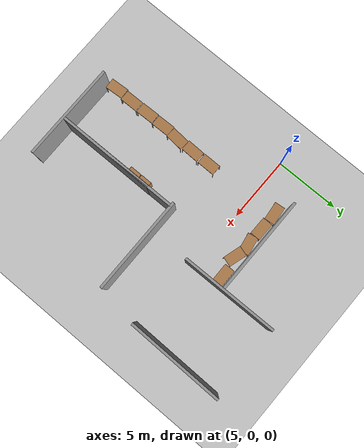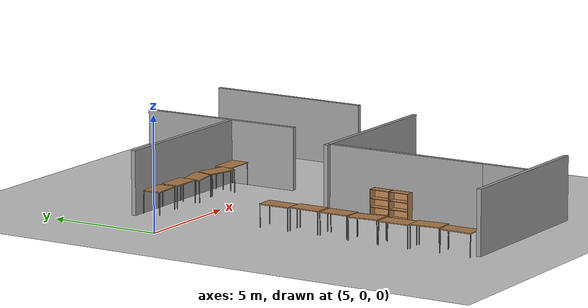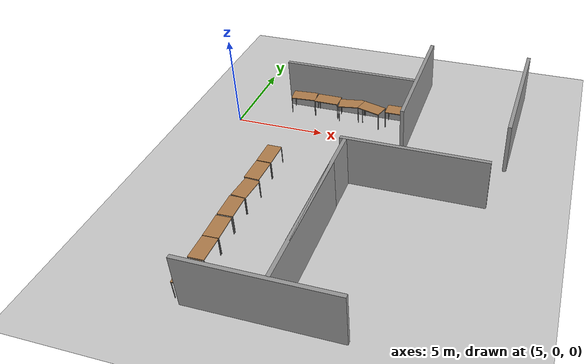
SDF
<sdf version="1.6">
 <world name="default">
  <model name="ground_plane">
   <static>1</static>
   <link name="link">
    <collision name="collision">
     <geometry><plane><normal>0 0 1</normal><size>100 100</size></plane></geometry>
     <surface><friction><ode><mu>100</mu><mu2>50</mu2></ode></friction></surface>
    </collision>
    <visual name="visual">
     <cast_shadows>0</cast_shadows>
     <geometry><plane><normal>0 0 1</normal><size>100 100</size></plane></geometry>
     <material>
      <script><uri>file://media/materials/scripts/gazebo.material</uri><name>Gazebo/Grey</name></script>
     </material>
    </visual>
   </link>
  </model>
  <model name="grey_wall_0">
   <static>1</static>
   <link name="link">
    <pose>0 0 1.4 0 -0 0</pose>
    <collision name="collision"><geometry><box><size>7.5 0.2 2.8</size></box></geometry></collision>
    <visual name="visual">
     <cast_shadows>0</cast_shadows>
     <geometry><box><size>7.5 0.2 2.8</size></box></geometry>
     <material>
      <script>
       <uri>model://grey_wall/materials/scripts</uri>
       <uri>model://grey_wall/materials/textures</uri>
       <name>vrc/grey_wall</name>
      </script>
     </material>
    </visual>
   </link>
   <pose>10.9804 2.57456 0 0 -0 0</pose>
  </model>
  <model name="grey_wall_1">
   <static>1</static>
   <link name="link">
    <pose>0 0 1.4 0 -0 0</pose>
    <collision name="collision"><geometry><box><size>7.5 0.2 2.8</size></box></geometry></collision>
    <visual name="visual">
     <cast_shadows>0</cast_shadows>
     <geometry><box><size>7.5 0.2 2.8</size></box></geometry>
     <material>
      <script>
       <uri>model://grey_wall/materials/scripts</uri>
       <uri>model://grey_wall/materials/textures</uri>
       <name>vrc/grey_wall</name>
      </script>
     </material>
    </visual>
   </link>
   <pose>14.8225 3.08441 0 0 0 -1.56171</pose>
  </model>
  <model name="grey_wall_5">
   <static>1</static>
   <link name="link">
    <pose>0 0 1.4 0 -0 0</pose>
    <collision name="collision"><geometry><box><size>7.5 0.2 2.8</size></box></geometry></collision>
    <visual name="visual">
     <cast_shadows>0</cast_shadows>
     <geometry><box><size>7.5 0.2 2.8</size></box></geometry>
     <material>
      <script>
       <uri>model://grey_wall/materials/scripts</uri>
       <uri>model://grey_wall/materials/textures</uri>
       <name>vrc/grey_wall</name>
      </script>
     </material>
    </visual>
   </link>
   <pose>16.2361 -3.7139 0 0 -0 0</pose>
  </model>
  <model name="grey_wall_6">
   <static>1</static>
   <link name="link">
    <pose>0 0 1.4 0 -0 0</pose>
    <collision name="collision"><geometry><box><size>7.5 0.2 2.8</size></box></geometry></collision>
    <visual name="visual">
     <cast_shadows>0</cast_shadows>
     <geometry><box><size>7.5 0.2 2.8</size></box></geometry>
     <material>
      <script>
       <uri>model://grey_wall/materials/scripts</uri>
       <uri>model://grey_wall/materials/textures</uri>
       <name>vrc/grey_wall</name>
      </script>
     </material>
    </visual>
   </link>
   <pose>12.8081 -9.51508 0 0 0 -1.5687</pose>
  </model>
  <model name="grey_wall_8">
   <static>1</static>
   <link name="link">
    <pose>0 0 1.4 0 -0 0</pose>
    <collision name="collision"><geometry><box><size>7.5 0.2 2.8</size></box></geometry></collision>
    <visual name="visual">
     <cast_shadows>0</cast_shadows>
     <geometry><box><size>7.5 0.2 2.8</size></box></geometry>
     <material>
      <script>
       <uri>model://grey_wall/materials/scripts</uri>
       <uri>model://grey_wall/materials/textures</uri>
       <name>vrc/grey_wall</name>
      </script>
     </material>
    </visual>
   </link>
   <pose>12.3131 -13.3481 0 0 -0 0</pose>
  </model>
  <model name="bookshelf">
   <static>1</static>
   <link name="link">
    <inertial><mass>1</mass></inertial>
    <collision name="back">
     <pose>0 0.005 0.6 0 -0 0</pose>
     <geometry><box><size>0.9 0.01 1.2</size></box></geometry>
    </collision>
    <visual name="visual1">
     <pose>0 0.005 0.6 0 -0 0</pose>
     <geometry><box><size>0.9 0.01 1.2</size></box></geometry>
     <material>
      <script><uri>file://media/materials/scripts/gazebo.material</uri><name>Gazebo/Wood</name></script>
     </material>
    </visual>
    <collision name="left_side">
     <pose>0.45 -0.195 0.6 0 -0 0</pose>
     <geometry><box><size>0.02 0.4 1.2</size></box></geometry>
    </collision>
    <visual name="visual2">
     <pose>0.45 -0.195 0.6 0 -0 0</pose>
     <geometry><box><size>0.02 0.4 1.2</size></box></geometry>
     <material>
      <script><uri>file://media/materials/scripts/gazebo.material</uri><name>Gazebo/Wood</name></script>
     </material>
    </visual>
    <collision name="right_side">
     <pose>-0.45 -0.195 0.6 0 -0 0</pose>
     <geometry><box><size>0.02 0.4 1.2</size></box></geometry>
    </collision>
    <visual name="visual3">
     <pose>-0.45 -0.195 0.6 0 -0 0</pose>
     <geometry><box><size>0.02 0.4 1.2</size></box></geometry>
     <material>
      <script><uri>file://media/materials/scripts/gazebo.material</uri><name>Gazebo/Wood</name></script>
     </material>
    </visual>
    <collision name="bottom">
     <pose>0 -0.195 0.03 0 -0 0</pose>
     <geometry><box><size>0.88 0.4 0.06</size></box></geometry>
    </collision>
    <visual name="visual4">
     <pose>0 -0.195 0.03 0 -0 0</pose>
     <geometry><box><size>0.88 0.4 0.06</size></box></geometry>
     <material>
      <script><uri>file://media/materials/scripts/gazebo.material</uri><name>Gazebo/Wood</name></script>
     </material>
    </visual>
    <collision name="top">
     <pose>0 -0.195 1.19 0 -0 0</pose>
     <geometry><box><size>0.88 0.4 0.02</size></box></geometry>
    </collision>
    <visual name="visual5">
     <pose>0 -0.195 1.19 0 -0 0</pose>
     <geometry><box><size>0.88 0.4 0.02</size></box></geometry>
     <material>
      <script><uri>file://media/materials/scripts/gazebo.material</uri><name>Gazebo/Wood</name></script>
     </material>
    </visual>
    <collision name="low_shelf">
     <pose>0 -0.195 0.43 0 -0 0</pose>
     <geometry><box><size>0.88 0.4 0.02</size></box></geometry>
    </collision>
    <visual name="visual6">
     <pose>0 -0.195 0.43 0 -0 0</pose>
     <geometry><box><size>0.88 0.4 0.02</size></box></geometry>
     <material>
      <script><uri>file://media/materials/scripts/gazebo.material</uri><name>Gazebo/Wood</name></script>
     </material>
    </visual>
    <collision name="high_shelf">
     <pose>0 -0.195 0.8 0 -0 0</pose>
     <geometry><box><size>0.88 0.4 0.02</size></box></geometry>
    </collision>
    <visual name="visual7">
     <pose>0 -0.195 0.8 0 -0 0</pose>
     <geometry><box><size>0.88 0.4 0.02</size></box></geometry>
     <material>
      <script><uri>file://media/materials/scripts/gazebo.material</uri><name>Gazebo/Wood</name></script>
     </material>
    </visual>
   </link>
   <pose>12.6657 -7.42335 0 0 0 -1.5772</pose>
  </model>
  <model name="grey_wall_9">
   <static>1</static>
   <link name="link">
    <pose>0 0 1.4 0 -0 0</pose>
    <collision name="collision"><geometry><box><size>7.5 0.2 2.8</size></box></geometry></collision>
    <visual name="visual">
     <cast_shadows>0</cast_shadows>
     <geometry><box><size>7.5 0.2 2.8</size></box></geometry>
     <material>
      <script>
       <uri>model://grey_wall/materials/scripts</uri>
       <uri>model://grey_wall/materials/textures</uri>
       <name>vrc/grey_wall</name>
      </script>
     </material>
    </visual>
   </link>
   <pose>20.4888 3.13835 0 0 -0 1.55576</pose>
  </model>
  <model name="table_0">
   <static>0</static>
   <link name="link">
    <collision name="surface">
     <pose>0 0 1 0 -0 0</pose>
     <geometry><box><size>1.5 0.8 0.03</size></box></geometry>
     <surface><friction><ode><mu>0.6</mu><mu2>0.6</mu2></ode></friction></surface>
    </collision>
    <visual name="visual1">
     <pose>0 0 1 0 -0 0</pose>
     <geometry><box><size>1.4 0.8 0.04</size></box></geometry>
     <material>
      <script><uri>file://media/materials/scripts/gazebo.material</uri><name>Gazebo/Wood</name></script>
     </material>
    </visual>
    <collision name="front_left_leg">
     <pose>0.68 0.38 0.5 0 -0 0</pose>
     <geometry><cylinder><radius>0.02</radius><length>1</length></cylinder></geometry>
    </collision>
    <visual name="front_left_leg">
     <pose>0.68 0.38 0.5 0 -0 0</pose>
     <geometry><cylinder><radius>0.02</radius><length>1</length></cylinder></geometry>
     <material>
      <script><uri>file://media/materials/scripts/gazebo.material</uri><name>Gazebo/Grey</name></script>
     </material>
    </visual>
    <collision name="front_right_leg">
     <pose>0.68 -0.38 0.5 0 -0 0</pose>
     <geometry><cylinder><radius>0.02</radius><length>1</length></cylinder></geometry>
    </collision>
    <visual name="front_right_leg">
     <pose>0.68 -0.38 0.5 0 -0 0</pose>
     <geometry><cylinder><radius>0.02</radius><length>1</length></cylinder></geometry>
     <material>
      <script><uri>file://media/materials/scripts/gazebo.material</uri><name>Gazebo/Grey</name></script>
     </material>
    </visual>
    <collision name="back_right_leg">
     <pose>-0.68 -0.38 0.5 0 -0 0</pose>
     <geometry><cylinder><radius>0.02</radius><length>1</length></cylinder></geometry>
    </collision>
    <visual name="back_right_leg">
     <pose>-0.68 -0.38 0.5 0 -0 0</pose>
     <geometry><cylinder><radius>0.02</radius><length>1</length></cylinder></geometry>
     <material>
      <script><uri>file://media/materials/scripts/gazebo.material</uri><name>Gazebo/Grey</name></script>
     </material>
    </visual>
    <collision name="back_left_leg">
     <pose>-0.68 0.38 0.5 0 -0 0</pose>
     <geometry><cylinder><radius>0.02</radius><length>1</length></cylinder></geometry>
    </collision>
    <visual name="back_left_leg">
     <pose>-0.68 0.38 0.5 0 -0 0</pose>
     <geometry><cylinder><radius>0.02</radius><length>1</length></cylinder></geometry>
     <material>
      <script><uri>file://media/materials/scripts/gazebo.material</uri><name>Gazebo/Grey</name></script>
     </material>
    </visual>
    <inertial>
     <inertia><ixx>1</ixx><ixy>0</ixy><ixz>0</ixz><iyy>1</iyy><iyz>0</iyz><izz>1</izz></inertia>
     <mass>1</mass>
    </inertial>
   </link>
   <pose>8.29925 1.99529 0.017017 0.002681 0.022852 0.109343</pose>
  </model>
  <model name="table_1">
   <static>0</static>
   <link name="link">
    <collision name="surface">
     <pose>0 0 1 0 -0 0</pose>
     <geometry><box><size>1.5 0.8 0.03</size></box></geometry>
     <surface><friction><ode><mu>0.6</mu><mu2>0.6</mu2></ode></friction></surface>
    </collision>
    <visual name="visual1">
     <pose>0 0 1 0 -0 0</pose>
     <geometry><box><size>1.4 0.8 0.04</size></box></geometry>
     <material>
      <script><uri>file://media/materials/scripts/gazebo.material</uri><name>Gazebo/Wood</name></script>
     </material>
    </visual>
    <collision name="front_left_leg">
     <pose>0.68 0.38 0.5 0 -0 0</pose>
     <geometry><cylinder><radius>0.02</radius><length>1</length></cylinder></geometry>
    </collision>
    <visual name="front_left_leg">
     <pose>0.68 0.38 0.5 0 -0 0</pose>
     <geometry><cylinder><radius>0.02</radius><length>1</length></cylinder></geometry>
     <material>
      <script><uri>file://media/materials/scripts/gazebo.material</uri><name>Gazebo/Grey</name></script>
     </material>
    </visual>
    <collision name="front_right_leg">
     <pose>0.68 -0.38 0.5 0 -0 0</pose>
     <geometry><cylinder><radius>0.02</radius><length>1</length></cylinder></geometry>
    </collision>
    <visual name="front_right_leg">
     <pose>0.68 -0.38 0.5 0 -0 0</pose>
     <geometry><cylinder><radius>0.02</radius><length>1</length></cylinder></geometry>
     <material>
      <script><uri>file://media/materials/scripts/gazebo.material</uri><name>Gazebo/Grey</name></script>
     </material>
    </visual>
    <collision name="back_right_leg">
     <pose>-0.68 -0.38 0.5 0 -0 0</pose>
     <geometry><cylinder><radius>0.02</radius><length>1</length></cylinder></geometry>
    </collision>
    <visual name="back_right_leg">
     <pose>-0.68 -0.38 0.5 0 -0 0</pose>
     <geometry><cylinder><radius>0.02</radius><length>1</length></cylinder></geometry>
     <material>
      <script><uri>file://media/materials/scripts/gazebo.material</uri><name>Gazebo/Grey</name></script>
     </material>
    </visual>
    <collision name="back_left_leg">
     <pose>-0.68 0.38 0.5 0 -0 0</pose>
     <geometry><cylinder><radius>0.02</radius><length>1</length></cylinder></geometry>
    </collision>
    <visual name="back_left_leg">
     <pose>-0.68 0.38 0.5 0 -0 0</pose>
     <geometry><cylinder><radius>0.02</radius><length>1</length></cylinder></geometry>
     <material>
      <script><uri>file://media/materials/scripts/gazebo.material</uri><name>Gazebo/Grey</name></script>
     </material>
    </visual>
    <inertial>
     <inertia><ixx>1</ixx><ixy>0</ixy><ixz>0</ixz><iyy>1</iyy><iyz>0</iyz><izz>1</izz></inertia>
     <mass>1</mass>
    </inertial>
   </link>
   <pose>9.77254 1.97204 0.030307 -1.5e-05 0.000418 -0.008263</pose>
  </model>
  <model name="table_2">
   <static>0</static>
   <link name="link">
    <collision name="surface">
     <pose>0 0 1 0 -0 0</pose>
     <geometry><box><size>1.5 0.8 0.03</size></box></geometry>
     <surface><friction><ode><mu>0.6</mu><mu2>0.6</mu2></ode></friction></surface>
    </collision>
    <visual name="visual1">
     <pose>0 0 1 0 -0 0</pose>
     <geometry><box><size>1.4 0.8 0.04</size></box></geometry>
     <material>
      <script><uri>file://media/materials/scripts/gazebo.material</uri><name>Gazebo/Wood</name></script>
     </material>
    </visual>
    <collision name="front_left_leg">
     <pose>0.68 0.38 0.5 0 -0 0</pose>
     <geometry><cylinder><radius>0.02</radius><length>1</length></cylinder></geometry>
    </collision>
    <visual name="front_left_leg">
     <pose>0.68 0.38 0.5 0 -0 0</pose>
     <geometry><cylinder><radius>0.02</radius><length>1</length></cylinder></geometry>
     <material>
      <script><uri>file://media/materials/scripts/gazebo.material</uri><name>Gazebo/Grey</name></script>
     </material>
    </visual>
    <collision name="front_right_leg">
     <pose>0.68 -0.38 0.5 0 -0 0</pose>
     <geometry><cylinder><radius>0.02</radius><length>1</length></cylinder></geometry>
    </collision>
    <visual name="front_right_leg">
     <pose>0.68 -0.38 0.5 0 -0 0</pose>
     <geometry><cylinder><radius>0.02</radius><length>1</length></cylinder></geometry>
     <material>
      <script><uri>file://media/materials/scripts/gazebo.material</uri><name>Gazebo/Grey</name></script>
     </material>
    </visual>
    <collision name="back_right_leg">
     <pose>-0.68 -0.38 0.5 0 -0 0</pose>
     <geometry><cylinder><radius>0.02</radius><length>1</length></cylinder></geometry>
    </collision>
    <visual name="back_right_leg">
     <pose>-0.68 -0.38 0.5 0 -0 0</pose>
     <geometry><cylinder><radius>0.02</radius><length>1</length></cylinder></geometry>
     <material>
      <script><uri>file://media/materials/scripts/gazebo.material</uri><name>Gazebo/Grey</name></script>
     </material>
    </visual>
    <collision name="back_left_leg">
     <pose>-0.68 0.38 0.5 0 -0 0</pose>
     <geometry><cylinder><radius>0.02</radius><length>1</length></cylinder></geometry>
    </collision>
    <visual name="back_left_leg">
     <pose>-0.68 0.38 0.5 0 -0 0</pose>
     <geometry><cylinder><radius>0.02</radius><length>1</length></cylinder></geometry>
     <material>
      <script><uri>file://media/materials/scripts/gazebo.material</uri><name>Gazebo/Grey</name></script>
     </material>
    </visual>
    <inertial>
     <inertia><ixx>1</ixx><ixy>0</ixy><ixz>0</ixz><iyy>1</iyy><iyz>0</iyz><izz>1</izz></inertia>
     <mass>1</mass>
    </inertial>
   </link>
   <pose>11.1931 1.9518 -5e-06 0 7e-06 0.172435</pose>
  </model>
  <model name="table_3">
   <static>0</static>
   <link name="link">
    <collision name="surface">
     <pose>0 0 1 0 -0 0</pose>
     <geometry><box><size>1.5 0.8 0.03</size></box></geometry>
     <surface><friction><ode><mu>0.6</mu><mu2>0.6</mu2></ode></friction></surface>
    </collision>
    <visual name="visual1">
     <pose>0 0 1 0 -0 0</pose>
     <geometry><box><size>1.4 0.8 0.04</size></box></geometry>
     <material>
      <script><uri>file://media/materials/scripts/gazebo.material</uri><name>Gazebo/Wood</name></script>
     </material>
    </visual>
    <collision name="front_left_leg">
     <pose>0.68 0.38 0.5 0 -0 0</pose>
     <geometry><cylinder><radius>0.02</radius><length>1</length></cylinder></geometry>
    </collision>
    <visual name="front_left_leg">
     <pose>0.68 0.38 0.5 0 -0 0</pose>
     <geometry><cylinder><radius>0.02</radius><length>1</length></cylinder></geometry>
     <material>
      <script><uri>file://media/materials/scripts/gazebo.material</uri><name>Gazebo/Grey</name></script>
     </material>
    </visual>
    <collision name="front_right_leg">
     <pose>0.68 -0.38 0.5 0 -0 0</pose>
     <geometry><cylinder><radius>0.02</radius><length>1</length></cylinder></geometry>
    </collision>
    <visual name="front_right_leg">
     <pose>0.68 -0.38 0.5 0 -0 0</pose>
     <geometry><cylinder><radius>0.02</radius><length>1</length></cylinder></geometry>
     <material>
      <script><uri>file://media/materials/scripts/gazebo.material</uri><name>Gazebo/Grey</name></script>
     </material>
    </visual>
    <collision name="back_right_leg">
     <pose>-0.68 -0.38 0.5 0 -0 0</pose>
     <geometry><cylinder><radius>0.02</radius><length>1</length></cylinder></geometry>
    </collision>
    <visual name="back_right_leg">
     <pose>-0.68 -0.38 0.5 0 -0 0</pose>
     <geometry><cylinder><radius>0.02</radius><length>1</length></cylinder></geometry>
     <material>
      <script><uri>file://media/materials/scripts/gazebo.material</uri><name>Gazebo/Grey</name></script>
     </material>
    </visual>
    <collision name="back_left_leg">
     <pose>-0.68 0.38 0.5 0 -0 0</pose>
     <geometry><cylinder><radius>0.02</radius><length>1</length></cylinder></geometry>
    </collision>
    <visual name="back_left_leg">
     <pose>-0.68 0.38 0.5 0 -0 0</pose>
     <geometry><cylinder><radius>0.02</radius><length>1</length></cylinder></geometry>
     <material>
      <script><uri>file://media/materials/scripts/gazebo.material</uri><name>Gazebo/Grey</name></script>
     </material>
    </visual>
    <inertial>
     <inertia><ixx>1</ixx><ixy>0</ixy><ixz>0</ixz><iyy>1</iyy><iyz>0</iyz><izz>1</izz></inertia>
     <mass>1</mass>
    </inertial>
   </link>
   <pose>12.4535 1.78657 0.029972 -0 4.3e-05 -0.283259</pose>
  </model>
  <model name="table_4">
   <static>0</static>
   <link name="link">
    <collision name="surface">
     <pose>0 0 1 0 -0 0</pose>
     <geometry><box><size>1.5 0.8 0.03</size></box></geometry>
     <surface><friction><ode><mu>0.6</mu><mu2>0.6</mu2></ode></friction></surface>
    </collision>
    <visual name="visual1">
     <pose>0 0 1 0 -0 0</pose>
     <geometry><box><size>1.4 0.8 0.04</size></box></geometry>
     <material>
      <script><uri>file://media/materials/scripts/gazebo.material</uri><name>Gazebo/Wood</name></script>
     </material>
    </visual>
    <collision name="front_left_leg">
     <pose>0.68 0.38 0.5 0 -0 0</pose>
     <geometry><cylinder><radius>0.02</radius><length>1</length></cylinder></geometry>
    </collision>
    <visual name="front_left_leg">
     <pose>0.68 0.38 0.5 0 -0 0</pose>
     <geometry><cylinder><radius>0.02</radius><length>1</length></cylinder></geometry>
     <material>
      <script><uri>file://media/materials/scripts/gazebo.material</uri><name>Gazebo/Grey</name></script>
     </material>
    </visual>
    <collision name="front_right_leg">
     <pose>0.68 -0.38 0.5 0 -0 0</pose>
     <geometry><cylinder><radius>0.02</radius><length>1</length></cylinder></geometry>
    </collision>
    <visual name="front_right_leg">
     <pose>0.68 -0.38 0.5 0 -0 0</pose>
     <geometry><cylinder><radius>0.02</radius><length>1</length></cylinder></geometry>
     <material>
      <script><uri>file://media/materials/scripts/gazebo.material</uri><name>Gazebo/Grey</name></script>
     </material>
    </visual>
    <collision name="back_right_leg">
     <pose>-0.68 -0.38 0.5 0 -0 0</pose>
     <geometry><cylinder><radius>0.02</radius><length>1</length></cylinder></geometry>
    </collision>
    <visual name="back_right_leg">
     <pose>-0.68 -0.38 0.5 0 -0 0</pose>
     <geometry><cylinder><radius>0.02</radius><length>1</length></cylinder></geometry>
     <material>
      <script><uri>file://media/materials/scripts/gazebo.material</uri><name>Gazebo/Grey</name></script>
     </material>
    </visual>
    <collision name="back_left_leg">
     <pose>-0.68 0.38 0.5 0 -0 0</pose>
     <geometry><cylinder><radius>0.02</radius><length>1</length></cylinder></geometry>
    </collision>
    <visual name="back_left_leg">
     <pose>-0.68 0.38 0.5 0 -0 0</pose>
     <geometry><cylinder><radius>0.02</radius><length>1</length></cylinder></geometry>
     <material>
      <script><uri>file://media/materials/scripts/gazebo.material</uri><name>Gazebo/Grey</name></script>
     </material>
    </visual>
    <inertial>
     <inertia><ixx>1</ixx><ixy>0</ixy><ixz>0</ixz><iyy>1</iyy><iyz>0</iyz><izz>1</izz></inertia>
     <mass>1</mass>
    </inertial>
   </link>
   <pose>13.9823 2.00803 -4.5e-05 4e-06 7e-06 0.009076</pose>
  </model>
  <model name="table_5">
   <static>0</static>
   <link name="link">
    <collision name="surface">
     <pose>0 0 1 0 -0 0</pose>
     <geometry><box><size>1.5 0.8 0.03</size></box></geometry>
     <surface><friction><ode><mu>0.6</mu><mu2>0.6</mu2></ode></friction></surface>
    </collision>
    <visual name="visual1">
     <pose>0 0 1 0 -0 0</pose>
     <geometry><box><size>1.4 0.8 0.04</size></box></geometry>
     <material>
      <script><uri>file://media/materials/scripts/gazebo.material</uri><name>Gazebo/Wood</name></script>
     </material>
    </visual>
    <collision name="front_left_leg">
     <pose>0.68 0.38 0.5 0 -0 0</pose>
     <geometry><cylinder><radius>0.02</radius><length>1</length></cylinder></geometry>
    </collision>
    <visual name="front_left_leg">
     <pose>0.68 0.38 0.5 0 -0 0</pose>
     <geometry><cylinder><radius>0.02</radius><length>1</length></cylinder></geometry>
     <material>
      <script><uri>file://media/materials/scripts/gazebo.material</uri><name>Gazebo/Grey</name></script>
     </material>
    </visual>
    <collision name="front_right_leg">
     <pose>0.68 -0.38 0.5 0 -0 0</pose>
     <geometry><cylinder><radius>0.02</radius><length>1</length></cylinder></geometry>
    </collision>
    <visual name="front_right_leg">
     <pose>0.68 -0.38 0.5 0 -0 0</pose>
     <geometry><cylinder><radius>0.02</radius><length>1</length></cylinder></geometry>
     <material>
      <script><uri>file://media/materials/scripts/gazebo.material</uri><name>Gazebo/Grey</name></script>
     </material>
    </visual>
    <collision name="back_right_leg">
     <pose>-0.68 -0.38 0.5 0 -0 0</pose>
     <geometry><cylinder><radius>0.02</radius><length>1</length></cylinder></geometry>
    </collision>
    <visual name="back_right_leg">
     <pose>-0.68 -0.38 0.5 0 -0 0</pose>
     <geometry><cylinder><radius>0.02</radius><length>1</length></cylinder></geometry>
     <material>
      <script><uri>file://media/materials/scripts/gazebo.material</uri><name>Gazebo/Grey</name></script>
     </material>
    </visual>
    <collision name="back_left_leg">
     <pose>-0.68 0.38 0.5 0 -0 0</pose>
     <geometry><cylinder><radius>0.02</radius><length>1</length></cylinder></geometry>
    </collision>
    <visual name="back_left_leg">
     <pose>-0.68 0.38 0.5 0 -0 0</pose>
     <geometry><cylinder><radius>0.02</radius><length>1</length></cylinder></geometry>
     <material>
      <script><uri>file://media/materials/scripts/gazebo.material</uri><name>Gazebo/Grey</name></script>
     </material>
    </visual>
    <inertial>
     <inertia><ixx>1</ixx><ixy>0</ixy><ixz>0</ixz><iyy>1</iyy><iyz>0</iyz><izz>1</izz></inertia>
     <mass>1</mass>
    </inertial>
   </link>
   <pose>8.56264 -12.4509 0.014876 -0.001011 0.020718 -1.51118</pose>
  </model>
  <model name="table_5_clone">
   <static>0</static>
   <link name="link">
    <collision name="surface">
     <pose>0 0 1 0 -0 0</pose>
     <geometry><box><size>1.5 0.8 0.03</size></box></geometry>
     <surface><friction><ode><mu>0.6</mu><mu2>0.6</mu2></ode></friction></surface>
    </collision>
    <visual name="visual1">
     <pose>0 0 1 0 -0 0</pose>
     <geometry><box><size>1.4 0.8 0.04</size></box></geometry>
     <material>
      <script><uri>file://media/materials/scripts/gazebo.material</uri><name>Gazebo/Wood</name></script>
     </material>
    </visual>
    <collision name="front_left_leg">
     <pose>0.68 0.38 0.5 0 -0 0</pose>
     <geometry><cylinder><radius>0.02</radius><length>1</length></cylinder></geometry>
    </collision>
    <visual name="front_left_leg">
     <pose>0.68 0.38 0.5 0 -0 0</pose>
     <geometry><cylinder><radius>0.02</radius><length>1</length></cylinder></geometry>
     <material>
      <script><uri>file://media/materials/scripts/gazebo.material</uri><name>Gazebo/Grey</name></script>
     </material>
    </visual>
    <collision name="front_right_leg">
     <pose>0.68 -0.38 0.5 0 -0 0</pose>
     <geometry><cylinder><radius>0.02</radius><length>1</length></cylinder></geometry>
    </collision>
    <visual name="front_right_leg">
     <pose>0.68 -0.38 0.5 0 -0 0</pose>
     <geometry><cylinder><radius>0.02</radius><length>1</length></cylinder></geometry>
     <material>
      <script><uri>file://media/materials/scripts/gazebo.material</uri><name>Gazebo/Grey</name></script>
     </material>
    </visual>
    <collision name="back_right_leg">
     <pose>-0.68 -0.38 0.5 0 -0 0</pose>
     <geometry><cylinder><radius>0.02</radius><length>1</length></cylinder></geometry>
    </collision>
    <visual name="back_right_leg">
     <pose>-0.68 -0.38 0.5 0 -0 0</pose>
     <geometry><cylinder><radius>0.02</radius><length>1</length></cylinder></geometry>
     <material>
      <script><uri>file://media/materials/scripts/gazebo.material</uri><name>Gazebo/Grey</name></script>
     </material>
    </visual>
    <collision name="back_left_leg">
     <pose>-0.68 0.38 0.5 0 -0 0</pose>
     <geometry><cylinder><radius>0.02</radius><length>1</length></cylinder></geometry>
    </collision>
    <visual name="back_left_leg">
     <pose>-0.68 0.38 0.5 0 -0 0</pose>
     <geometry><cylinder><radius>0.02</radius><length>1</length></cylinder></geometry>
     <material>
      <script><uri>file://media/materials/scripts/gazebo.material</uri><name>Gazebo/Grey</name></script>
     </material>
    </visual>
    <inertial>
     <inertia><ixx>1</ixx><ixy>0</ixy><ixz>0</ixz><iyy>1</iyy><iyz>0</iyz><izz>1</izz></inertia>
     <mass>1</mass>
    </inertial>
   </link>
   <pose>8.59029 -11.0553 0.045945 -3.2e-05 -0.021002 -1.55607</pose>
  </model>
  <model name="table_5_clone_0">
   <static>0</static>
   <link name="link">
    <collision name="surface">
     <pose>0 0 1 0 -0 0</pose>
     <geometry><box><size>1.5 0.8 0.03</size></box></geometry>
     <surface><friction><ode><mu>0.6</mu><mu2>0.6</mu2></ode></friction></surface>
    </collision>
    <visual name="visual1">
     <pose>0 0 1 0 -0 0</pose>
     <geometry><box><size>1.4 0.8 0.04</size></box></geometry>
     <material>
      <script><uri>file://media/materials/scripts/gazebo.material</uri><name>Gazebo/Wood</name></script>
     </material>
    </visual>
    <collision name="front_left_leg">
     <pose>0.68 0.38 0.5 0 -0 0</pose>
     <geometry><cylinder><radius>0.02</radius><length>1</length></cylinder></geometry>
    </collision>
    <visual name="front_left_leg">
     <pose>0.68 0.38 0.5 0 -0 0</pose>
     <geometry><cylinder><radius>0.02</radius><length>1</length></cylinder></geometry>
     <material>
      <script><uri>file://media/materials/scripts/gazebo.material</uri><name>Gazebo/Grey</name></script>
     </material>
    </visual>
    <collision name="front_right_leg">
     <pose>0.68 -0.38 0.5 0 -0 0</pose>
     <geometry><cylinder><radius>0.02</radius><length>1</length></cylinder></geometry>
    </collision>
    <visual name="front_right_leg">
     <pose>0.68 -0.38 0.5 0 -0 0</pose>
     <geometry><cylinder><radius>0.02</radius><length>1</length></cylinder></geometry>
     <material>
      <script><uri>file://media/materials/scripts/gazebo.material</uri><name>Gazebo/Grey</name></script>
     </material>
    </visual>
    <collision name="back_right_leg">
     <pose>-0.68 -0.38 0.5 0 -0 0</pose>
     <geometry><cylinder><radius>0.02</radius><length>1</length></cylinder></geometry>
    </collision>
    <visual name="back_right_leg">
     <pose>-0.68 -0.38 0.5 0 -0 0</pose>
     <geometry><cylinder><radius>0.02</radius><length>1</length></cylinder></geometry>
     <material>
      <script><uri>file://media/materials/scripts/gazebo.material</uri><name>Gazebo/Grey</name></script>
     </material>
    </visual>
    <collision name="back_left_leg">
     <pose>-0.68 0.38 0.5 0 -0 0</pose>
     <geometry><cylinder><radius>0.02</radius><length>1</length></cylinder></geometry>
    </collision>
    <visual name="back_left_leg">
     <pose>-0.68 0.38 0.5 0 -0 0</pose>
     <geometry><cylinder><radius>0.02</radius><length>1</length></cylinder></geometry>
     <material>
      <script><uri>file://media/materials/scripts/gazebo.material</uri><name>Gazebo/Grey</name></script>
     </material>
    </visual>
    <inertial>
     <inertia><ixx>1</ixx><ixy>0</ixy><ixz>0</ixz><iyy>1</iyy><iyz>0</iyz><izz>1</izz></inertia>
     <mass>1</mass>
    </inertial>
   </link>
   <pose>8.5353 -9.58081 -0.000122 -1.9e-05 3.4e-05 -1.5427</pose>
  </model>
  <model name="table_5_clone_1">
   <static>0</static>
   <link name="link">
    <collision name="surface">
     <pose>0 0 1 0 -0 0</pose>
     <geometry><box><size>1.5 0.8 0.03</size></box></geometry>
     <surface><friction><ode><mu>0.6</mu><mu2>0.6</mu2></ode></friction></surface>
    </collision>
    <visual name="visual1">
     <pose>0 0 1 0 -0 0</pose>
     <geometry><box><size>1.4 0.8 0.04</size></box></geometry>
     <material>
      <script><uri>file://media/materials/scripts/gazebo.material</uri><name>Gazebo/Wood</name></script>
     </material>
    </visual>
    <collision name="front_left_leg">
     <pose>0.68 0.38 0.5 0 -0 0</pose>
     <geometry><cylinder><radius>0.02</radius><length>1</length></cylinder></geometry>
    </collision>
    <visual name="front_left_leg">
     <pose>0.68 0.38 0.5 0 -0 0</pose>
     <geometry><cylinder><radius>0.02</radius><length>1</length></cylinder></geometry>
     <material>
      <script><uri>file://media/materials/scripts/gazebo.material</uri><name>Gazebo/Grey</name></script>
     </material>
    </visual>
    <collision name="front_right_leg">
     <pose>0.68 -0.38 0.5 0 -0 0</pose>
     <geometry><cylinder><radius>0.02</radius><length>1</length></cylinder></geometry>
    </collision>
    <visual name="front_right_leg">
     <pose>0.68 -0.38 0.5 0 -0 0</pose>
     <geometry><cylinder><radius>0.02</radius><length>1</length></cylinder></geometry>
     <material>
      <script><uri>file://media/materials/scripts/gazebo.material</uri><name>Gazebo/Grey</name></script>
     </material>
    </visual>
    <collision name="back_right_leg">
     <pose>-0.68 -0.38 0.5 0 -0 0</pose>
     <geometry><cylinder><radius>0.02</radius><length>1</length></cylinder></geometry>
    </collision>
    <visual name="back_right_leg">
     <pose>-0.68 -0.38 0.5 0 -0 0</pose>
     <geometry><cylinder><radius>0.02</radius><length>1</length></cylinder></geometry>
     <material>
      <script><uri>file://media/materials/scripts/gazebo.material</uri><name>Gazebo/Grey</name></script>
     </material>
    </visual>
    <collision name="back_left_leg">
     <pose>-0.68 0.38 0.5 0 -0 0</pose>
     <geometry><cylinder><radius>0.02</radius><length>1</length></cylinder></geometry>
    </collision>
    <visual name="back_left_leg">
     <pose>-0.68 0.38 0.5 0 -0 0</pose>
     <geometry><cylinder><radius>0.02</radius><length>1</length></cylinder></geometry>
     <material>
      <script><uri>file://media/materials/scripts/gazebo.material</uri><name>Gazebo/Grey</name></script>
     </material>
    </visual>
    <inertial>
     <inertia><ixx>1</ixx><ixy>0</ixy><ixz>0</ixz><iyy>1</iyy><iyz>0</iyz><izz>1</izz></inertia>
     <mass>1</mass>
    </inertial>
   </link>
   <pose>8.52122 -8.15174 0.015004 -9e-06 -0.021522 -1.5436</pose>
  </model>
  <model name="table_5_clone_2">
   <static>0</static>
   <link name="link">
    <collision name="surface">
     <pose>0 0 1 0 -0 0</pose>
     <geometry><box><size>1.5 0.8 0.03</size></box></geometry>
     <surface><friction><ode><mu>0.6</mu><mu2>0.6</mu2></ode></friction></surface>
    </collision>
    <visual name="visual1">
     <pose>0 0 1 0 -0 0</pose>
     <geometry><box><size>1.4 0.8 0.04</size></box></geometry>
     <material>
      <script><uri>file://media/materials/scripts/gazebo.material</uri><name>Gazebo/Wood</name></script>
     </material>
    </visual>
    <collision name="front_left_leg">
     <pose>0.68 0.38 0.5 0 -0 0</pose>
     <geometry><cylinder><radius>0.02</radius><length>1</length></cylinder></geometry>
    </collision>
    <visual name="front_left_leg">
     <pose>0.68 0.38 0.5 0 -0 0</pose>
     <geometry><cylinder><radius>0.02</radius><length>1</length></cylinder></geometry>
     <material>
      <script><uri>file://media/materials/scripts/gazebo.material</uri><name>Gazebo/Grey</name></script>
     </material>
    </visual>
    <collision name="front_right_leg">
     <pose>0.68 -0.38 0.5 0 -0 0</pose>
     <geometry><cylinder><radius>0.02</radius><length>1</length></cylinder></geometry>
    </collision>
    <visual name="front_right_leg">
     <pose>0.68 -0.38 0.5 0 -0 0</pose>
     <geometry><cylinder><radius>0.02</radius><length>1</length></cylinder></geometry>
     <material>
      <script><uri>file://media/materials/scripts/gazebo.material</uri><name>Gazebo/Grey</name></script>
     </material>
    </visual>
    <collision name="back_right_leg">
     <pose>-0.68 -0.38 0.5 0 -0 0</pose>
     <geometry><cylinder><radius>0.02</radius><length>1</length></cylinder></geometry>
    </collision>
    <visual name="back_right_leg">
     <pose>-0.68 -0.38 0.5 0 -0 0</pose>
     <geometry><cylinder><radius>0.02</radius><length>1</length></cylinder></geometry>
     <material>
      <script><uri>file://media/materials/scripts/gazebo.material</uri><name>Gazebo/Grey</name></script>
     </material>
    </visual>
    <collision name="back_left_leg">
     <pose>-0.68 0.38 0.5 0 -0 0</pose>
     <geometry><cylinder><radius>0.02</radius><length>1</length></cylinder></geometry>
    </collision>
    <visual name="back_left_leg">
     <pose>-0.68 0.38 0.5 0 -0 0</pose>
     <geometry><cylinder><radius>0.02</radius><length>1</length></cylinder></geometry>
     <material>
      <script><uri>file://media/materials/scripts/gazebo.material</uri><name>Gazebo/Grey</name></script>
     </material>
    </visual>
    <inertial>
     <inertia><ixx>1</ixx><ixy>0</ixy><ixz>0</ixz><iyy>1</iyy><iyz>0</iyz><izz>1</izz></inertia>
     <mass>1</mass>
    </inertial>
   </link>
   <pose>8.5981 -6.74409 0.015299 -0 -0.021857 -1.65205</pose>
  </model>
  <model name="grey_wall_10">
   <static>1</static>
   <link name="link">
    <pose>0 0 1.4 0 -0 0</pose>
    <collision name="collision"><geometry><box><size>7.5 0.2 2.8</size></box></geometry></collision>
    <visual name="visual">
     <cast_shadows>0</cast_shadows>
     <geometry><box><size>7.5 0.2 2.8</size></box></geometry>
     <material>
      <script>
       <uri>model://grey_wall/materials/scripts</uri>
       <uri>model://grey_wall/materials/textures</uri>
       <name>vrc/grey_wall</name>
      </script>
     </material>
    </visual>
   </link>
   <pose>12.7918 -7.46244 0 0 -0 1.57413</pose>
  </model>
  <model name="table_5_clone_2_clone">
   <static>0</static>
   <link name="link">
    <collision name="surface">
     <pose>0 0 1 0 -0 0</pose>
     <geometry><box><size>1.5 0.8 0.03</size></box></geometry>
     <surface><friction><ode><mu>0.6</mu><mu2>0.6</mu2></ode></friction></surface>
    </collision>
    <visual name="visual1">
     <pose>0 0 1 0 -0 0</pose>
     <geometry><box><size>1.4 0.8 0.04</size></box></geometry>
     <material>
      <script><uri>file://media/materials/scripts/gazebo.material</uri><name>Gazebo/Wood</name></script>
     </material>
    </visual>
    <collision name="front_left_leg">
     <pose>0.68 0.38 0.5 0 -0 0</pose>
     <geometry><cylinder><radius>0.02</radius><length>1</length></cylinder></geometry>
    </collision>
    <visual name="front_left_leg">
     <pose>0.68 0.38 0.5 0 -0 0</pose>
     <geometry><cylinder><radius>0.02</radius><length>1</length></cylinder></geometry>
     <material>
      <script><uri>file://media/materials/scripts/gazebo.material</uri><name>Gazebo/Grey</name></script>
     </material>
    </visual>
    <collision name="front_right_leg">
     <pose>0.68 -0.38 0.5 0 -0 0</pose>
     <geometry><cylinder><radius>0.02</radius><length>1</length></cylinder></geometry>
    </collision>
    <visual name="front_right_leg">
     <pose>0.68 -0.38 0.5 0 -0 0</pose>
     <geometry><cylinder><radius>0.02</radius><length>1</length></cylinder></geometry>
     <material>
      <script><uri>file://media/materials/scripts/gazebo.material</uri><name>Gazebo/Grey</name></script>
     </material>
    </visual>
    <collision name="back_right_leg">
     <pose>-0.68 -0.38 0.5 0 -0 0</pose>
     <geometry><cylinder><radius>0.02</radius><length>1</length></cylinder></geometry>
    </collision>
    <visual name="back_right_leg">
     <pose>-0.68 -0.38 0.5 0 -0 0</pose>
     <geometry><cylinder><radius>0.02</radius><length>1</length></cylinder></geometry>
     <material>
      <script><uri>file://media/materials/scripts/gazebo.material</uri><name>Gazebo/Grey</name></script>
     </material>
    </visual>
    <collision name="back_left_leg">
     <pose>-0.68 0.38 0.5 0 -0 0</pose>
     <geometry><cylinder><radius>0.02</radius><length>1</length></cylinder></geometry>
    </collision>
    <visual name="back_left_leg">
     <pose>-0.68 0.38 0.5 0 -0 0</pose>
     <geometry><cylinder><radius>0.02</radius><length>1</length></cylinder></geometry>
     <material>
      <script><uri>file://media/materials/scripts/gazebo.material</uri><name>Gazebo/Grey</name></script>
     </material>
    </visual>
    <inertial>
     <inertia><ixx>1</ixx><ixy>0</ixy><ixz>0</ixz><iyy>1</iyy><iyz>0</iyz><izz>1</izz></inertia>
     <mass>1</mass>
    </inertial>
   </link>
   <pose>8.58996 -5.28903 0.030307 -0.000441 -0.000203 -1.59565</pose>
  </model>
  <model name="bookshelf_2">
   <static>1</static>
   <link name="link">
    <inertial><mass>1</mass></inertial>
    <collision name="back">
     <pose>0 0.005 0.6 0 -0 0</pose>
     <geometry><box><size>0.9 0.01 1.2</size></box></geometry>
    </collision>
    <visual name="visual1">
     <pose>0 0.005 0.6 0 -0 0</pose>
     <geometry><box><size>0.9 0.01 1.2</size></box></geometry>
     <material>
      <script><uri>file://media/materials/scripts/gazebo.material</uri><name>Gazebo/Wood</name></script>
     </material>
    </visual>
    <collision name="left_side">
     <pose>0.45 -0.195 0.6 0 -0 0</pose>
     <geometry><box><size>0.02 0.4 1.2</size></box></geometry>
    </collision>
    <visual name="visual2">
     <pose>0.45 -0.195 0.6 0 -0 0</pose>
     <geometry><box><size>0.02 0.4 1.2</size></box></geometry>
     <material>
      <script><uri>file://media/materials/scripts/gazebo.material</uri><name>Gazebo/Wood</name></script>
     </material>
    </visual>
    <collision name="right_side">
     <pose>-0.45 -0.195 0.6 0 -0 0</pose>
     <geometry><box><size>0.02 0.4 1.2</size></box></geometry>
    </collision>
    <visual name="visual3">
     <pose>-0.45 -0.195 0.6 0 -0 0</pose>
     <geometry><box><size>0.02 0.4 1.2</size></box></geometry>
     <material>
      <script><uri>file://media/materials/scripts/gazebo.material</uri><name>Gazebo/Wood</name></script>
     </material>
    </visual>
    <collision name="bottom">
     <pose>0 -0.195 0.03 0 -0 0</pose>
     <geometry><box><size>0.88 0.4 0.06</size></box></geometry>
    </collision>
    <visual name="visual4">
     <pose>0 -0.195 0.03 0 -0 0</pose>
     <geometry><box><size>0.88 0.4 0.06</size></box></geometry>
     <material>
      <script><uri>file://media/materials/scripts/gazebo.material</uri><name>Gazebo/Wood</name></script>
     </material>
    </visual>
    <collision name="top">
     <pose>0 -0.195 1.19 0 -0 0</pose>
     <geometry><box><size>0.88 0.4 0.02</size></box></geometry>
    </collision>
    <visual name="visual5">
     <pose>0 -0.195 1.19 0 -0 0</pose>
     <geometry><box><size>0.88 0.4 0.02</size></box></geometry>
     <material>
      <script><uri>file://media/materials/scripts/gazebo.material</uri><name>Gazebo/Wood</name></script>
     </material>
    </visual>
    <collision name="low_shelf">
     <pose>0 -0.195 0.43 0 -0 0</pose>
     <geometry><box><size>0.88 0.4 0.02</size></box></geometry>
    </collision>
    <visual name="visual6">
     <pose>0 -0.195 0.43 0 -0 0</pose>
     <geometry><box><size>0.88 0.4 0.02</size></box></geometry>
     <material>
      <script><uri>file://media/materials/scripts/gazebo.material</uri><name>Gazebo/Wood</name></script>
     </material>
    </visual>
    <collision name="high_shelf">
     <pose>0 -0.195 0.8 0 -0 0</pose>
     <geometry><box><size>0.88 0.4 0.02</size></box></geometry>
    </collision>
    <visual name="visual7">
     <pose>0 -0.195 0.8 0 -0 0</pose>
     <geometry><box><size>0.88 0.4 0.02</size></box></geometry>
     <material>
      <script><uri>file://media/materials/scripts/gazebo.material</uri><name>Gazebo/Wood</name></script>
     </material>
    </visual>
   </link>
   <pose>12.66 -6.49141 0 0 0 -1.57751</pose>
  </model>
  <model name="table_6">
   <static>0</static>
   <link name="link">
    <collision name="surface">
     <pose>0 0 1 0 -0 0</pose>
     <geometry><box><size>1.5 0.8 0.03</size></box></geometry>
     <surface><friction><ode><mu>0.6</mu><mu2>0.6</mu2></ode></friction></surface>
    </collision>
    <visual name="visual1">
     <pose>0 0 1 0 -0 0</pose>
     <geometry><box><size>1.4 0.8 0.04</size></box></geometry>
     <material>
      <script><uri>file://media/materials/scripts/gazebo.material</uri><name>Gazebo/Wood</name></script>
     </material>
    </visual>
    <collision name="front_left_leg">
     <pose>0.68 0.38 0.5 0 -0 0</pose>
     <geometry><cylinder><radius>0.02</radius><length>1</length></cylinder></geometry>
    </collision>
    <visual name="front_left_leg">
     <pose>0.68 0.38 0.5 0 -0 0</pose>
     <geometry><cylinder><radius>0.02</radius><length>1</length></cylinder></geometry>
     <material>
      <script><uri>file://media/materials/scripts/gazebo.material</uri><name>Gazebo/Grey</name></script>
     </material>
    </visual>
    <collision name="front_right_leg">
     <pose>0.68 -0.38 0.5 0 -0 0</pose>
     <geometry><cylinder><radius>0.02</radius><length>1</length></cylinder></geometry>
    </collision>
    <visual name="front_right_leg">
     <pose>0.68 -0.38 0.5 0 -0 0</pose>
     <geometry><cylinder><radius>0.02</radius><length>1</length></cylinder></geometry>
     <material>
      <script><uri>file://media/materials/scripts/gazebo.material</uri><name>Gazebo/Grey</name></script>
     </material>
    </visual>
    <collision name="back_right_leg">
     <pose>-0.68 -0.38 0.5 0 -0 0</pose>
     <geometry><cylinder><radius>0.02</radius><length>1</length></cylinder></geometry>
    </collision>
    <visual name="back_right_leg">
     <pose>-0.68 -0.38 0.5 0 -0 0</pose>
     <geometry><cylinder><radius>0.02</radius><length>1</length></cylinder></geometry>
     <material>
      <script><uri>file://media/materials/scripts/gazebo.material</uri><name>Gazebo/Grey</name></script>
     </material>
    </visual>
    <collision name="back_left_leg">
     <pose>-0.68 0.38 0.5 0 -0 0</pose>
     <geometry><cylinder><radius>0.02</radius><length>1</length></cylinder></geometry>
    </collision>
    <visual name="back_left_leg">
     <pose>-0.68 0.38 0.5 0 -0 0</pose>
     <geometry><cylinder><radius>0.02</radius><length>1</length></cylinder></geometry>
     <material>
      <script><uri>file://media/materials/scripts/gazebo.material</uri><name>Gazebo/Grey</name></script>
     </material>
    </visual>
    <inertial>
     <inertia><ixx>1</ixx><ixy>0</ixy><ixz>0</ixz><iyy>1</iyy><iyz>0</iyz><izz>1</izz></inertia>
     <mass>1</mass>
    </inertial>
   </link>
   <pose>8.58591 -3.80979 8e-06 -0 2.6e-05 -1.57355</pose>
  </model>
 </world>
</sdf>
